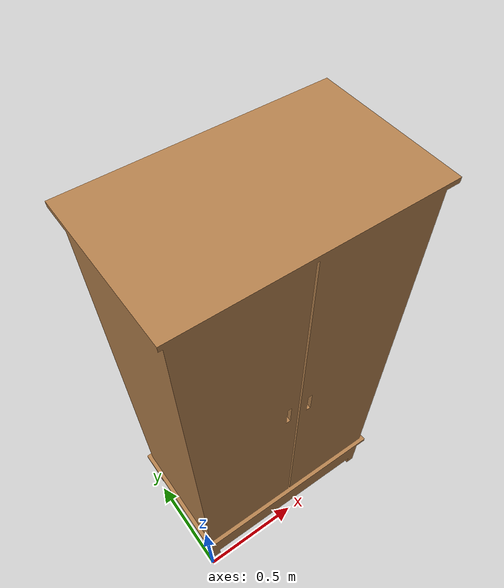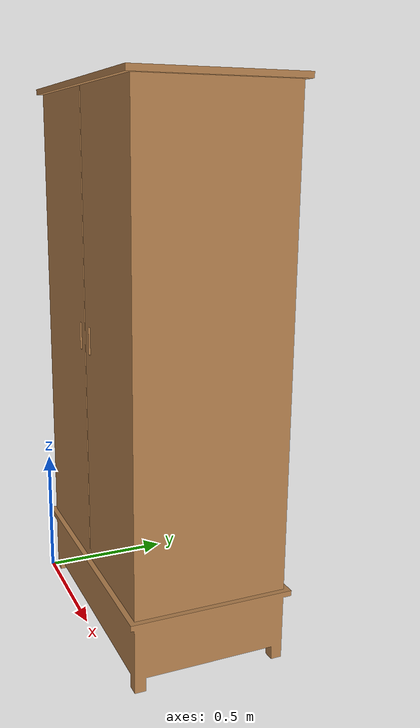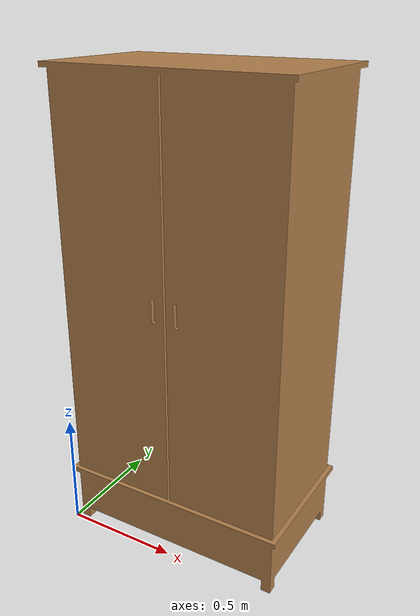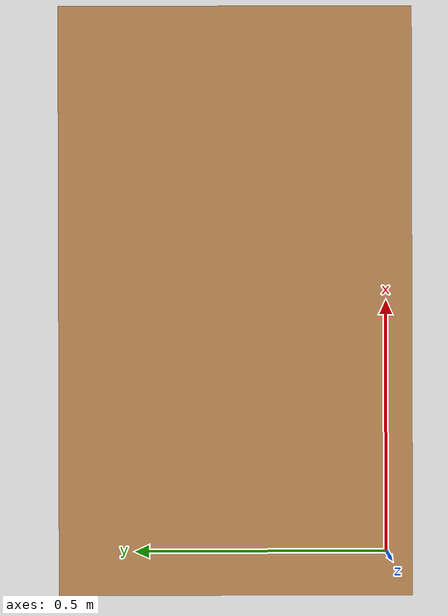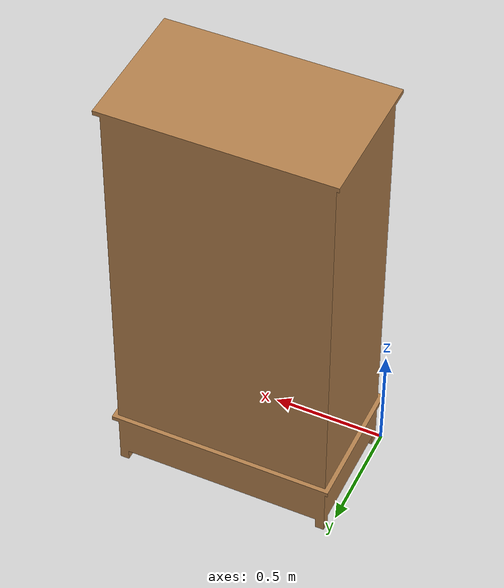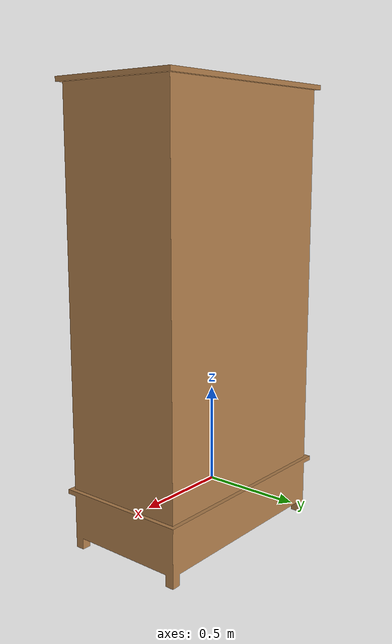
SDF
<?xml version="1.0" ?>
<sdf version="1.4">
  <model name="wardrobe">
    <static>1</static>
    <link name="link">

      <collision name="colision1">
        <pose>0 0 0 0 0 0</pose>
        <geometry>
          <mesh>
            <uri>model://wardrobe/meshes/wardrobe.stl</uri>
	    <scale> 1 1 1 </scale>
          </mesh>
        </geometry>
        <surface>
          <bounce />
          <friction>
            <ode />
          </friction>
          <contact>
            <ode />
          </contact>
        </surface>
      </collision>

      <visual name="visual1">
        <pose>0 0 0 0 0 0</pose>
        <geometry>
          <mesh>
            <uri>model://wardrobe/meshes/wardrobe.stl</uri>
	    <scale> 1 1 1 </scale>
          </mesh>
        </geometry>
        <material>
          <script>
            <uri>file://media/materials/scripts/gazebo.material</uri>
            <name>Gazebo/WoodPallet</name>
          </script>
        </material>
      </visual>

      <velocity_decay>
        <linear>0.000000</linear>
        <angular>0.000000</angular>
      </velocity_decay>
      <self_collide>0</self_collide>
      <kinematic>0</kinematic>
      <gravity>1</gravity>
    </link>
  </model>
</sdf>
